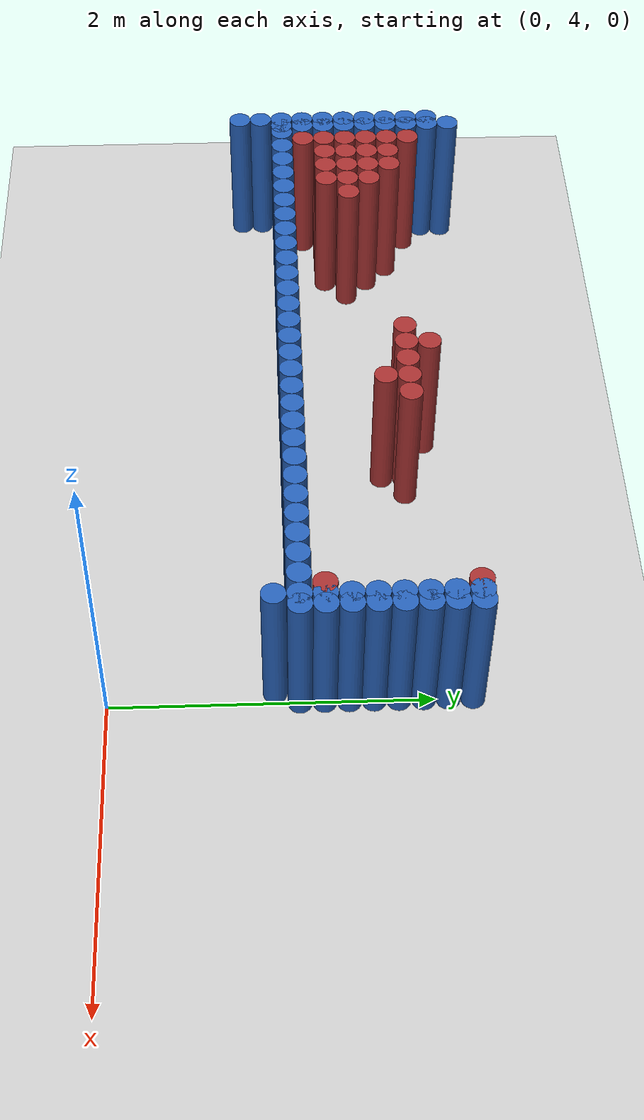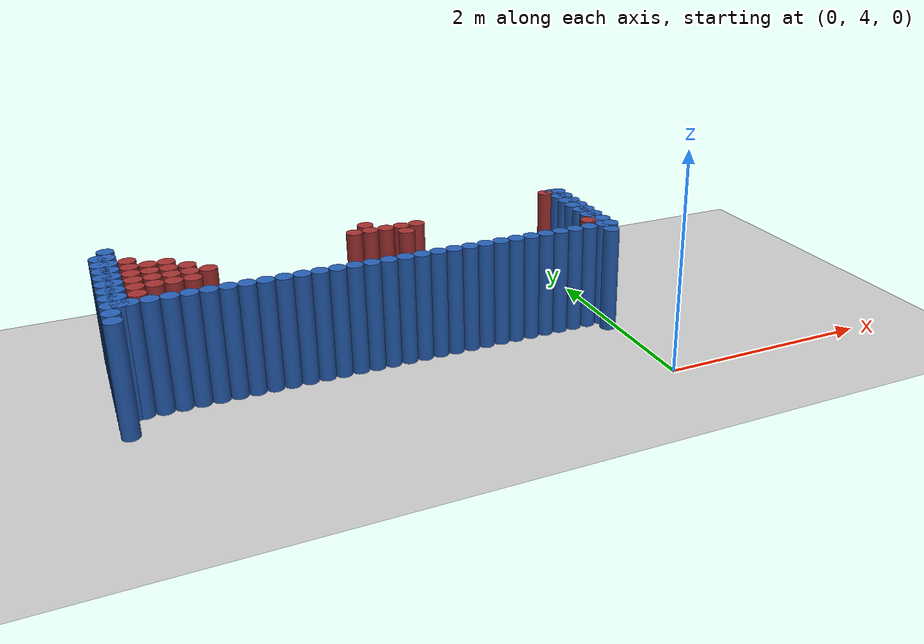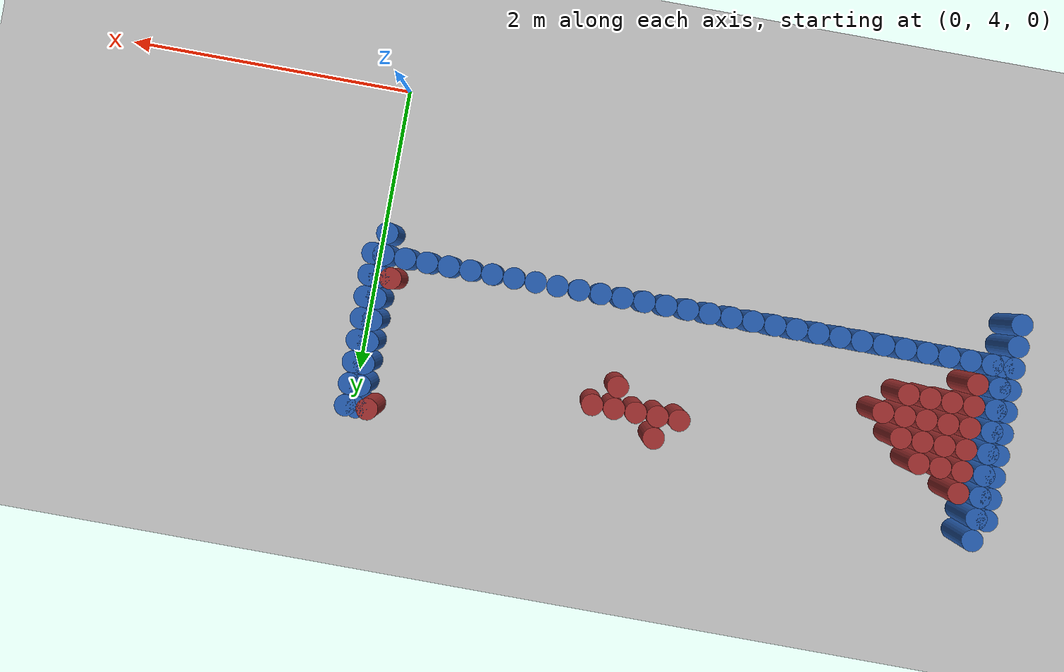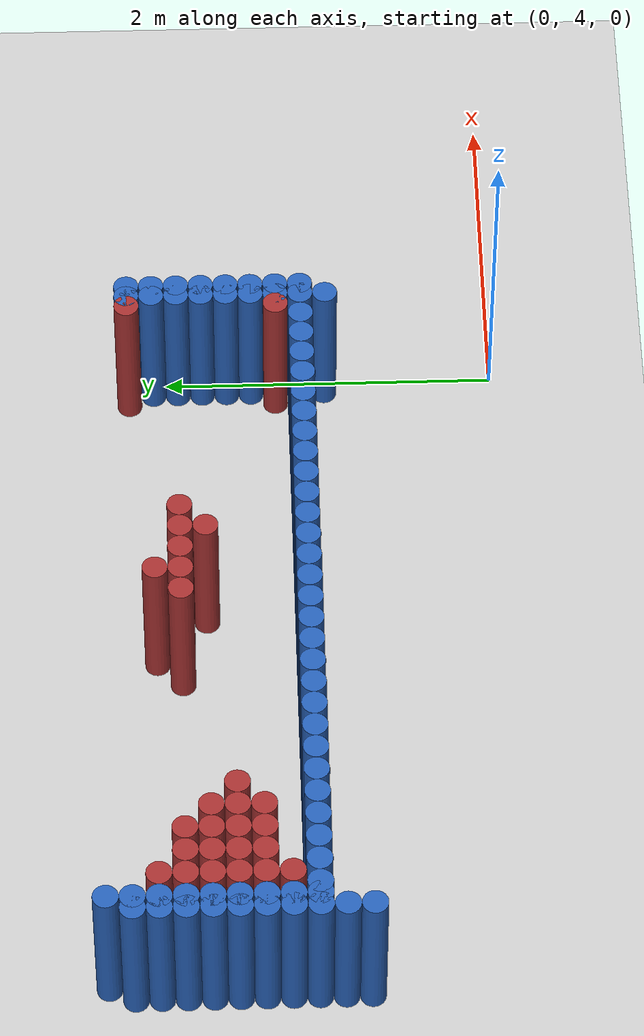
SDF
<sdf version="1.6">
 <world name="barn_world">
  <model name="ground_plane">
   <static>1</static>
   <link name="link">
    <collision name="collision">
     <geometry><plane><normal>0 0 1</normal><size>100 100</size></plane></geometry>
    </collision>
    <visual name="visual">
     <geometry><plane><normal>0 0 1</normal><size>100 100</size></plane></geometry>
     <material>
      <script><uri>file://media/materials/scripts/gazebo.material</uri><name>Gazebo/Grey</name></script>
     </material>
    </visual>
   </link>
  </model>
  <model name="unit_cylinder_93">
   <static>1</static>
   <pose>-4.4250 4.8750 0.5 0 0 0</pose>
   <link name="link">
    <collision name="collision">
     <geometry><cylinder><radius>0.075</radius><length>1</length></cylinder></geometry>
    </collision>
    <visual name="visual">
     <geometry><cylinder><radius>0.075</radius><length>1</length></cylinder></geometry>
     <material><ambient>0.152 0.379 0.72 1</ambient><diffuse>0.152 0.379 0.72 1</diffuse></material>
    </visual>
   </link>
  </model>
  <model name="unit_cylinder_94">
   <static>1</static>
   <pose>-0.0750 5.0250 0.5 0 0 0</pose>
   <link name="link">
    <collision name="collision">
     <geometry><cylinder><radius>0.075</radius><length>1</length></cylinder></geometry>
    </collision>
    <visual name="visual">
     <geometry><cylinder><radius>0.075</radius><length>1</length></cylinder></geometry>
     <material><ambient>0.152 0.379 0.72 1</ambient><diffuse>0.152 0.379 0.72 1</diffuse></material>
    </visual>
   </link>
  </model>
  <model name="unit_cylinder_95">
   <static>1</static>
   <pose>-4.4250 5.0250 0.5 0 0 0</pose>
   <link name="link">
    <collision name="collision">
     <geometry><cylinder><radius>0.075</radius><length>1</length></cylinder></geometry>
    </collision>
    <visual name="visual">
     <geometry><cylinder><radius>0.075</radius><length>1</length></cylinder></geometry>
     <material><ambient>0.152 0.379 0.72 1</ambient><diffuse>0.152 0.379 0.72 1</diffuse></material>
    </visual>
   </link>
  </model>
  <model name="unit_cylinder_96">
   <static>1</static>
   <pose>-0.0750 5.1750 0.5 0 0 0</pose>
   <link name="link">
    <collision name="collision">
     <geometry><cylinder><radius>0.075</radius><length>1</length></cylinder></geometry>
    </collision>
    <visual name="visual">
     <geometry><cylinder><radius>0.075</radius><length>1</length></cylinder></geometry>
     <material><ambient>0.152 0.379 0.72 1</ambient><diffuse>0.152 0.379 0.72 1</diffuse></material>
    </visual>
   </link>
  </model>
  <model name="unit_cylinder_97">
   <static>1</static>
   <pose>-0.2250 5.1750 0.5 0 0 0</pose>
   <link name="link">
    <collision name="collision">
     <geometry><cylinder><radius>0.075</radius><length>1</length></cylinder></geometry>
    </collision>
    <visual name="visual">
     <geometry><cylinder><radius>0.075</radius><length>1</length></cylinder></geometry>
     <material><ambient>0.152 0.379 0.72 1</ambient><diffuse>0.152 0.379 0.72 1</diffuse></material>
    </visual>
   </link>
  </model>
  <model name="unit_cylinder_98">
   <static>1</static>
   <pose>-0.3750 5.1750 0.5 0 0 0</pose>
   <link name="link">
    <collision name="collision">
     <geometry><cylinder><radius>0.075</radius><length>1</length></cylinder></geometry>
    </collision>
    <visual name="visual">
     <geometry><cylinder><radius>0.075</radius><length>1</length></cylinder></geometry>
     <material><ambient>0.152 0.379 0.72 1</ambient><diffuse>0.152 0.379 0.72 1</diffuse></material>
    </visual>
   </link>
  </model>
  <model name="unit_cylinder_99">
   <static>1</static>
   <pose>-0.5250 5.1750 0.5 0 0 0</pose>
   <link name="link">
    <collision name="collision">
     <geometry><cylinder><radius>0.075</radius><length>1</length></cylinder></geometry>
    </collision>
    <visual name="visual">
     <geometry><cylinder><radius>0.075</radius><length>1</length></cylinder></geometry>
     <material><ambient>0.152 0.379 0.72 1</ambient><diffuse>0.152 0.379 0.72 1</diffuse></material>
    </visual>
   </link>
  </model>
  <model name="unit_cylinder_100">
   <static>1</static>
   <pose>-0.6750 5.1750 0.5 0 0 0</pose>
   <link name="link">
    <collision name="collision">
     <geometry><cylinder><radius>0.075</radius><length>1</length></cylinder></geometry>
    </collision>
    <visual name="visual">
     <geometry><cylinder><radius>0.075</radius><length>1</length></cylinder></geometry>
     <material><ambient>0.152 0.379 0.72 1</ambient><diffuse>0.152 0.379 0.72 1</diffuse></material>
    </visual>
   </link>
  </model>
  <model name="unit_cylinder_101">
   <static>1</static>
   <pose>-0.8250 5.1750 0.5 0 0 0</pose>
   <link name="link">
    <collision name="collision">
     <geometry><cylinder><radius>0.075</radius><length>1</length></cylinder></geometry>
    </collision>
    <visual name="visual">
     <geometry><cylinder><radius>0.075</radius><length>1</length></cylinder></geometry>
     <material><ambient>0.152 0.379 0.72 1</ambient><diffuse>0.152 0.379 0.72 1</diffuse></material>
    </visual>
   </link>
  </model>
  <model name="unit_cylinder_102">
   <static>1</static>
   <pose>-0.9750 5.1750 0.5 0 0 0</pose>
   <link name="link">
    <collision name="collision">
     <geometry><cylinder><radius>0.075</radius><length>1</length></cylinder></geometry>
    </collision>
    <visual name="visual">
     <geometry><cylinder><radius>0.075</radius><length>1</length></cylinder></geometry>
     <material><ambient>0.152 0.379 0.72 1</ambient><diffuse>0.152 0.379 0.72 1</diffuse></material>
    </visual>
   </link>
  </model>
  <model name="unit_cylinder_103">
   <static>1</static>
   <pose>-1.1250 5.1750 0.5 0 0 0</pose>
   <link name="link">
    <collision name="collision">
     <geometry><cylinder><radius>0.075</radius><length>1</length></cylinder></geometry>
    </collision>
    <visual name="visual">
     <geometry><cylinder><radius>0.075</radius><length>1</length></cylinder></geometry>
     <material><ambient>0.152 0.379 0.72 1</ambient><diffuse>0.152 0.379 0.72 1</diffuse></material>
    </visual>
   </link>
  </model>
  <model name="unit_cylinder_104">
   <static>1</static>
   <pose>-1.2750 5.1750 0.5 0 0 0</pose>
   <link name="link">
    <collision name="collision">
     <geometry><cylinder><radius>0.075</radius><length>1</length></cylinder></geometry>
    </collision>
    <visual name="visual">
     <geometry><cylinder><radius>0.075</radius><length>1</length></cylinder></geometry>
     <material><ambient>0.152 0.379 0.72 1</ambient><diffuse>0.152 0.379 0.72 1</diffuse></material>
    </visual>
   </link>
  </model>
  <model name="unit_cylinder_105">
   <static>1</static>
   <pose>-1.4250 5.1750 0.5 0 0 0</pose>
   <link name="link">
    <collision name="collision">
     <geometry><cylinder><radius>0.075</radius><length>1</length></cylinder></geometry>
    </collision>
    <visual name="visual">
     <geometry><cylinder><radius>0.075</radius><length>1</length></cylinder></geometry>
     <material><ambient>0.152 0.379 0.72 1</ambient><diffuse>0.152 0.379 0.72 1</diffuse></material>
    </visual>
   </link>
  </model>
  <model name="unit_cylinder_106">
   <static>1</static>
   <pose>-1.5750 5.1750 0.5 0 0 0</pose>
   <link name="link">
    <collision name="collision">
     <geometry><cylinder><radius>0.075</radius><length>1</length></cylinder></geometry>
    </collision>
    <visual name="visual">
     <geometry><cylinder><radius>0.075</radius><length>1</length></cylinder></geometry>
     <material><ambient>0.152 0.379 0.72 1</ambient><diffuse>0.152 0.379 0.72 1</diffuse></material>
    </visual>
   </link>
  </model>
  <model name="unit_cylinder_107">
   <static>1</static>
   <pose>-1.7250 5.1750 0.5 0 0 0</pose>
   <link name="link">
    <collision name="collision">
     <geometry><cylinder><radius>0.075</radius><length>1</length></cylinder></geometry>
    </collision>
    <visual name="visual">
     <geometry><cylinder><radius>0.075</radius><length>1</length></cylinder></geometry>
     <material><ambient>0.152 0.379 0.72 1</ambient><diffuse>0.152 0.379 0.72 1</diffuse></material>
    </visual>
   </link>
  </model>
  <model name="unit_cylinder_108">
   <static>1</static>
   <pose>-1.8750 5.1750 0.5 0 0 0</pose>
   <link name="link">
    <collision name="collision">
     <geometry><cylinder><radius>0.075</radius><length>1</length></cylinder></geometry>
    </collision>
    <visual name="visual">
     <geometry><cylinder><radius>0.075</radius><length>1</length></cylinder></geometry>
     <material><ambient>0.152 0.379 0.72 1</ambient><diffuse>0.152 0.379 0.72 1</diffuse></material>
    </visual>
   </link>
  </model>
  <model name="unit_cylinder_109">
   <static>1</static>
   <pose>-2.0250 5.1750 0.5 0 0 0</pose>
   <link name="link">
    <collision name="collision">
     <geometry><cylinder><radius>0.075</radius><length>1</length></cylinder></geometry>
    </collision>
    <visual name="visual">
     <geometry><cylinder><radius>0.075</radius><length>1</length></cylinder></geometry>
     <material><ambient>0.152 0.379 0.72 1</ambient><diffuse>0.152 0.379 0.72 1</diffuse></material>
    </visual>
   </link>
  </model>
  <model name="unit_cylinder_110">
   <static>1</static>
   <pose>-2.1750 5.1750 0.5 0 0 0</pose>
   <link name="link">
    <collision name="collision">
     <geometry><cylinder><radius>0.075</radius><length>1</length></cylinder></geometry>
    </collision>
    <visual name="visual">
     <geometry><cylinder><radius>0.075</radius><length>1</length></cylinder></geometry>
     <material><ambient>0.152 0.379 0.72 1</ambient><diffuse>0.152 0.379 0.72 1</diffuse></material>
    </visual>
   </link>
  </model>
  <model name="unit_cylinder_111">
   <static>1</static>
   <pose>-2.3250 5.1750 0.5 0 0 0</pose>
   <link name="link">
    <collision name="collision">
     <geometry><cylinder><radius>0.075</radius><length>1</length></cylinder></geometry>
    </collision>
    <visual name="visual">
     <geometry><cylinder><radius>0.075</radius><length>1</length></cylinder></geometry>
     <material><ambient>0.152 0.379 0.72 1</ambient><diffuse>0.152 0.379 0.72 1</diffuse></material>
    </visual>
   </link>
  </model>
  <model name="unit_cylinder_112">
   <static>1</static>
   <pose>-2.4750 5.1750 0.5 0 0 0</pose>
   <link name="link">
    <collision name="collision">
     <geometry><cylinder><radius>0.075</radius><length>1</length></cylinder></geometry>
    </collision>
    <visual name="visual">
     <geometry><cylinder><radius>0.075</radius><length>1</length></cylinder></geometry>
     <material><ambient>0.152 0.379 0.72 1</ambient><diffuse>0.152 0.379 0.72 1</diffuse></material>
    </visual>
   </link>
  </model>
  <model name="unit_cylinder_113">
   <static>1</static>
   <pose>-2.6250 5.1750 0.5 0 0 0</pose>
   <link name="link">
    <collision name="collision">
     <geometry><cylinder><radius>0.075</radius><length>1</length></cylinder></geometry>
    </collision>
    <visual name="visual">
     <geometry><cylinder><radius>0.075</radius><length>1</length></cylinder></geometry>
     <material><ambient>0.152 0.379 0.72 1</ambient><diffuse>0.152 0.379 0.72 1</diffuse></material>
    </visual>
   </link>
  </model>
  <model name="unit_cylinder_114">
   <static>1</static>
   <pose>-2.7750 5.1750 0.5 0 0 0</pose>
   <link name="link">
    <collision name="collision">
     <geometry><cylinder><radius>0.075</radius><length>1</length></cylinder></geometry>
    </collision>
    <visual name="visual">
     <geometry><cylinder><radius>0.075</radius><length>1</length></cylinder></geometry>
     <material><ambient>0.152 0.379 0.72 1</ambient><diffuse>0.152 0.379 0.72 1</diffuse></material>
    </visual>
   </link>
  </model>
  <model name="unit_cylinder_115">
   <static>1</static>
   <pose>-2.9250 5.1750 0.5 0 0 0</pose>
   <link name="link">
    <collision name="collision">
     <geometry><cylinder><radius>0.075</radius><length>1</length></cylinder></geometry>
    </collision>
    <visual name="visual">
     <geometry><cylinder><radius>0.075</radius><length>1</length></cylinder></geometry>
     <material><ambient>0.152 0.379 0.72 1</ambient><diffuse>0.152 0.379 0.72 1</diffuse></material>
    </visual>
   </link>
  </model>
  <model name="unit_cylinder_116">
   <static>1</static>
   <pose>-3.0750 5.1750 0.5 0 0 0</pose>
   <link name="link">
    <collision name="collision">
     <geometry><cylinder><radius>0.075</radius><length>1</length></cylinder></geometry>
    </collision>
    <visual name="visual">
     <geometry><cylinder><radius>0.075</radius><length>1</length></cylinder></geometry>
     <material><ambient>0.152 0.379 0.72 1</ambient><diffuse>0.152 0.379 0.72 1</diffuse></material>
    </visual>
   </link>
  </model>
  <model name="unit_cylinder_117">
   <static>1</static>
   <pose>-3.2250 5.1750 0.5 0 0 0</pose>
   <link name="link">
    <collision name="collision">
     <geometry><cylinder><radius>0.075</radius><length>1</length></cylinder></geometry>
    </collision>
    <visual name="visual">
     <geometry><cylinder><radius>0.075</radius><length>1</length></cylinder></geometry>
     <material><ambient>0.152 0.379 0.72 1</ambient><diffuse>0.152 0.379 0.72 1</diffuse></material>
    </visual>
   </link>
  </model>
  <model name="unit_cylinder_118">
   <static>1</static>
   <pose>-3.3750 5.1750 0.5 0 0 0</pose>
   <link name="link">
    <collision name="collision">
     <geometry><cylinder><radius>0.075</radius><length>1</length></cylinder></geometry>
    </collision>
    <visual name="visual">
     <geometry><cylinder><radius>0.075</radius><length>1</length></cylinder></geometry>
     <material><ambient>0.152 0.379 0.72 1</ambient><diffuse>0.152 0.379 0.72 1</diffuse></material>
    </visual>
   </link>
  </model>
  <model name="unit_cylinder_119">
   <static>1</static>
   <pose>-3.5250 5.1750 0.5 0 0 0</pose>
   <link name="link">
    <collision name="collision">
     <geometry><cylinder><radius>0.075</radius><length>1</length></cylinder></geometry>
    </collision>
    <visual name="visual">
     <geometry><cylinder><radius>0.075</radius><length>1</length></cylinder></geometry>
     <material><ambient>0.152 0.379 0.72 1</ambient><diffuse>0.152 0.379 0.72 1</diffuse></material>
    </visual>
   </link>
  </model>
  <model name="unit_cylinder_120">
   <static>1</static>
   <pose>-3.6750 5.1750 0.5 0 0 0</pose>
   <link name="link">
    <collision name="collision">
     <geometry><cylinder><radius>0.075</radius><length>1</length></cylinder></geometry>
    </collision>
    <visual name="visual">
     <geometry><cylinder><radius>0.075</radius><length>1</length></cylinder></geometry>
     <material><ambient>0.152 0.379 0.72 1</ambient><diffuse>0.152 0.379 0.72 1</diffuse></material>
    </visual>
   </link>
  </model>
  <model name="unit_cylinder_121">
   <static>1</static>
   <pose>-3.8250 5.1750 0.5 0 0 0</pose>
   <link name="link">
    <collision name="collision">
     <geometry><cylinder><radius>0.075</radius><length>1</length></cylinder></geometry>
    </collision>
    <visual name="visual">
     <geometry><cylinder><radius>0.075</radius><length>1</length></cylinder></geometry>
     <material><ambient>0.152 0.379 0.72 1</ambient><diffuse>0.152 0.379 0.72 1</diffuse></material>
    </visual>
   </link>
  </model>
  <model name="unit_cylinder_122">
   <static>1</static>
   <pose>-3.9750 5.1750 0.5 0 0 0</pose>
   <link name="link">
    <collision name="collision">
     <geometry><cylinder><radius>0.075</radius><length>1</length></cylinder></geometry>
    </collision>
    <visual name="visual">
     <geometry><cylinder><radius>0.075</radius><length>1</length></cylinder></geometry>
     <material><ambient>0.152 0.379 0.72 1</ambient><diffuse>0.152 0.379 0.72 1</diffuse></material>
    </visual>
   </link>
  </model>
  <model name="unit_cylinder_123">
   <static>1</static>
   <pose>-4.1250 5.1750 0.5 0 0 0</pose>
   <link name="link">
    <collision name="collision">
     <geometry><cylinder><radius>0.075</radius><length>1</length></cylinder></geometry>
    </collision>
    <visual name="visual">
     <geometry><cylinder><radius>0.075</radius><length>1</length></cylinder></geometry>
     <material><ambient>0.152 0.379 0.72 1</ambient><diffuse>0.152 0.379 0.72 1</diffuse></material>
    </visual>
   </link>
  </model>
  <model name="unit_cylinder_124">
   <static>1</static>
   <pose>-4.2750 5.1750 0.5 0 0 0</pose>
   <link name="link">
    <collision name="collision">
     <geometry><cylinder><radius>0.075</radius><length>1</length></cylinder></geometry>
    </collision>
    <visual name="visual">
     <geometry><cylinder><radius>0.075</radius><length>1</length></cylinder></geometry>
     <material><ambient>0.152 0.379 0.72 1</ambient><diffuse>0.152 0.379 0.72 1</diffuse></material>
    </visual>
   </link>
  </model>
  <model name="unit_cylinder_125">
   <static>1</static>
   <pose>-4.4250 5.1750 0.5 0 0 0</pose>
   <link name="link">
    <collision name="collision">
     <geometry><cylinder><radius>0.075</radius><length>1</length></cylinder></geometry>
    </collision>
    <visual name="visual">
     <geometry><cylinder><radius>0.075</radius><length>1</length></cylinder></geometry>
     <material><ambient>0.152 0.379 0.72 1</ambient><diffuse>0.152 0.379 0.72 1</diffuse></material>
    </visual>
   </link>
  </model>
  <model name="unit_cylinder_126">
   <static>1</static>
   <pose>-4.3500 5.1750 0.5 0 0 0</pose>
   <link name="link">
    <collision name="collision">
     <geometry><cylinder><radius>0.075</radius><length>1</length></cylinder></geometry>
    </collision>
    <visual name="visual">
     <geometry><cylinder><radius>0.075</radius><length>1</length></cylinder></geometry>
     <material><ambient>0.152 0.379 0.72 1</ambient><diffuse>0.152 0.379 0.72 1</diffuse></material>
    </visual>
   </link>
  </model>
  <model name="unit_cylinder_127">
   <static>1</static>
   <pose>-4.3500 5.3250 0.5 0 0 0</pose>
   <link name="link">
    <collision name="collision">
     <geometry><cylinder><radius>0.075</radius><length>1</length></cylinder></geometry>
    </collision>
    <visual name="visual">
     <geometry><cylinder><radius>0.075</radius><length>1</length></cylinder></geometry>
     <material><ambient>0.152 0.379 0.72 1</ambient><diffuse>0.152 0.379 0.72 1</diffuse></material>
    </visual>
   </link>
  </model>
  <model name="unit_cylinder_128">
   <static>1</static>
   <pose>-4.3500 5.4750 0.5 0 0 0</pose>
   <link name="link">
    <collision name="collision">
     <geometry><cylinder><radius>0.075</radius><length>1</length></cylinder></geometry>
    </collision>
    <visual name="visual">
     <geometry><cylinder><radius>0.075</radius><length>1</length></cylinder></geometry>
     <material><ambient>0.152 0.379 0.72 1</ambient><diffuse>0.152 0.379 0.72 1</diffuse></material>
    </visual>
   </link>
  </model>
  <model name="unit_cylinder_129">
   <static>1</static>
   <pose>-4.3500 5.6250 0.5 0 0 0</pose>
   <link name="link">
    <collision name="collision">
     <geometry><cylinder><radius>0.075</radius><length>1</length></cylinder></geometry>
    </collision>
    <visual name="visual">
     <geometry><cylinder><radius>0.075</radius><length>1</length></cylinder></geometry>
     <material><ambient>0.152 0.379 0.72 1</ambient><diffuse>0.152 0.379 0.72 1</diffuse></material>
    </visual>
   </link>
  </model>
  <model name="unit_cylinder_130">
   <static>1</static>
   <pose>-4.3500 5.7750 0.5 0 0 0</pose>
   <link name="link">
    <collision name="collision">
     <geometry><cylinder><radius>0.075</radius><length>1</length></cylinder></geometry>
    </collision>
    <visual name="visual">
     <geometry><cylinder><radius>0.075</radius><length>1</length></cylinder></geometry>
     <material><ambient>0.152 0.379 0.72 1</ambient><diffuse>0.152 0.379 0.72 1</diffuse></material>
    </visual>
   </link>
  </model>
  <model name="unit_cylinder_131">
   <static>1</static>
   <pose>-4.3500 5.9250 0.5 0 0 0</pose>
   <link name="link">
    <collision name="collision">
     <geometry><cylinder><radius>0.075</radius><length>1</length></cylinder></geometry>
    </collision>
    <visual name="visual">
     <geometry><cylinder><radius>0.075</radius><length>1</length></cylinder></geometry>
     <material><ambient>0.152 0.379 0.72 1</ambient><diffuse>0.152 0.379 0.72 1</diffuse></material>
    </visual>
   </link>
  </model>
  <model name="unit_cylinder_132">
   <static>1</static>
   <pose>-4.3500 6.0750 0.5 0 0 0</pose>
   <link name="link">
    <collision name="collision">
     <geometry><cylinder><radius>0.075</radius><length>1</length></cylinder></geometry>
    </collision>
    <visual name="visual">
     <geometry><cylinder><radius>0.075</radius><length>1</length></cylinder></geometry>
     <material><ambient>0.152 0.379 0.72 1</ambient><diffuse>0.152 0.379 0.72 1</diffuse></material>
    </visual>
   </link>
  </model>
  <model name="unit_cylinder_133">
   <static>1</static>
   <pose>-4.3500 6.2250 0.5 0 0 0</pose>
   <link name="link">
    <collision name="collision">
     <geometry><cylinder><radius>0.075</radius><length>1</length></cylinder></geometry>
    </collision>
    <visual name="visual">
     <geometry><cylinder><radius>0.075</radius><length>1</length></cylinder></geometry>
     <material><ambient>0.152 0.379 0.72 1</ambient><diffuse>0.152 0.379 0.72 1</diffuse></material>
    </visual>
   </link>
  </model>
  <model name="unit_cylinder_134">
   <static>1</static>
   <pose>-4.3500 6.3750 0.5 0 0 0</pose>
   <link name="link">
    <collision name="collision">
     <geometry><cylinder><radius>0.075</radius><length>1</length></cylinder></geometry>
    </collision>
    <visual name="visual">
     <geometry><cylinder><radius>0.075</radius><length>1</length></cylinder></geometry>
     <material><ambient>0.152 0.379 0.72 1</ambient><diffuse>0.152 0.379 0.72 1</diffuse></material>
    </visual>
   </link>
  </model>
  <model name="unit_cylinder_156">
   <static>1</static>
   <pose>-4.2000 5.3250 0.5 0 0 0</pose>
   <link name="link">
    <collision name="collision">
     <geometry><cylinder><radius>0.075</radius><length>1</length></cylinder></geometry>
    </collision>
    <visual name="visual">
     <geometry><cylinder><radius>0.075</radius><length>1</length></cylinder></geometry>
     <material><ambient>0.648 0.192 0.192 1</ambient><diffuse>0.648 0.192 0.192 1</diffuse></material>
    </visual>
   </link>
  </model>
  <model name="unit_cylinder_157">
   <static>1</static>
   <pose>-4.2000 5.4750 0.5 0 0 0</pose>
   <link name="link">
    <collision name="collision">
     <geometry><cylinder><radius>0.075</radius><length>1</length></cylinder></geometry>
    </collision>
    <visual name="visual">
     <geometry><cylinder><radius>0.075</radius><length>1</length></cylinder></geometry>
     <material><ambient>0.648 0.192 0.192 1</ambient><diffuse>0.648 0.192 0.192 1</diffuse></material>
    </visual>
   </link>
  </model>
  <model name="unit_cylinder_158">
   <static>1</static>
   <pose>-4.2000 5.6250 0.5 0 0 0</pose>
   <link name="link">
    <collision name="collision">
     <geometry><cylinder><radius>0.075</radius><length>1</length></cylinder></geometry>
    </collision>
    <visual name="visual">
     <geometry><cylinder><radius>0.075</radius><length>1</length></cylinder></geometry>
     <material><ambient>0.648 0.192 0.192 1</ambient><diffuse>0.648 0.192 0.192 1</diffuse></material>
    </visual>
   </link>
  </model>
  <model name="unit_cylinder_159">
   <static>1</static>
   <pose>-4.2000 5.7750 0.5 0 0 0</pose>
   <link name="link">
    <collision name="collision">
     <geometry><cylinder><radius>0.075</radius><length>1</length></cylinder></geometry>
    </collision>
    <visual name="visual">
     <geometry><cylinder><radius>0.075</radius><length>1</length></cylinder></geometry>
     <material><ambient>0.648 0.192 0.192 1</ambient><diffuse>0.648 0.192 0.192 1</diffuse></material>
    </visual>
   </link>
  </model>
  <model name="unit_cylinder_160">
   <static>1</static>
   <pose>-4.2000 5.9250 0.5 0 0 0</pose>
   <link name="link">
    <collision name="collision">
     <geometry><cylinder><radius>0.075</radius><length>1</length></cylinder></geometry>
    </collision>
    <visual name="visual">
     <geometry><cylinder><radius>0.075</radius><length>1</length></cylinder></geometry>
     <material><ambient>0.648 0.192 0.192 1</ambient><diffuse>0.648 0.192 0.192 1</diffuse></material>
    </visual>
   </link>
  </model>
  <model name="unit_cylinder_161">
   <static>1</static>
   <pose>-4.2000 6.0750 0.5 0 0 0</pose>
   <link name="link">
    <collision name="collision">
     <geometry><cylinder><radius>0.075</radius><length>1</length></cylinder></geometry>
    </collision>
    <visual name="visual">
     <geometry><cylinder><radius>0.075</radius><length>1</length></cylinder></geometry>
     <material><ambient>0.648 0.192 0.192 1</ambient><diffuse>0.648 0.192 0.192 1</diffuse></material>
    </visual>
   </link>
  </model>
  <model name="unit_cylinder_174">
   <static>1</static>
   <pose>-4.0500 5.4750 0.5 0 0 0</pose>
   <link name="link">
    <collision name="collision">
     <geometry><cylinder><radius>0.075</radius><length>1</length></cylinder></geometry>
    </collision>
    <visual name="visual">
     <geometry><cylinder><radius>0.075</radius><length>1</length></cylinder></geometry>
     <material><ambient>0.648 0.192 0.192 1</ambient><diffuse>0.648 0.192 0.192 1</diffuse></material>
    </visual>
   </link>
  </model>
  <model name="unit_cylinder_175">
   <static>1</static>
   <pose>-4.0500 5.6250 0.5 0 0 0</pose>
   <link name="link">
    <collision name="collision">
     <geometry><cylinder><radius>0.075</radius><length>1</length></cylinder></geometry>
    </collision>
    <visual name="visual">
     <geometry><cylinder><radius>0.075</radius><length>1</length></cylinder></geometry>
     <material><ambient>0.648 0.192 0.192 1</ambient><diffuse>0.648 0.192 0.192 1</diffuse></material>
    </visual>
   </link>
  </model>
  <model name="unit_cylinder_176">
   <static>1</static>
   <pose>-4.0500 5.7750 0.5 0 0 0</pose>
   <link name="link">
    <collision name="collision">
     <geometry><cylinder><radius>0.075</radius><length>1</length></cylinder></geometry>
    </collision>
    <visual name="visual">
     <geometry><cylinder><radius>0.075</radius><length>1</length></cylinder></geometry>
     <material><ambient>0.648 0.192 0.192 1</ambient><diffuse>0.648 0.192 0.192 1</diffuse></material>
    </visual>
   </link>
  </model>
  <model name="unit_cylinder_177">
   <static>1</static>
   <pose>-4.0500 5.9250 0.5 0 0 0</pose>
   <link name="link">
    <collision name="collision">
     <geometry><cylinder><radius>0.075</radius><length>1</length></cylinder></geometry>
    </collision>
    <visual name="visual">
     <geometry><cylinder><radius>0.075</radius><length>1</length></cylinder></geometry>
     <material><ambient>0.648 0.192 0.192 1</ambient><diffuse>0.648 0.192 0.192 1</diffuse></material>
    </visual>
   </link>
  </model>
  <model name="unit_cylinder_183">
   <static>1</static>
   <pose>-3.9000 5.4750 0.5 0 0 0</pose>
   <link name="link">
    <collision name="collision">
     <geometry><cylinder><radius>0.075</radius><length>1</length></cylinder></geometry>
    </collision>
    <visual name="visual">
     <geometry><cylinder><radius>0.075</radius><length>1</length></cylinder></geometry>
     <material><ambient>0.648 0.192 0.192 1</ambient><diffuse>0.648 0.192 0.192 1</diffuse></material>
    </visual>
   </link>
  </model>
  <model name="unit_cylinder_184">
   <static>1</static>
   <pose>-3.9000 5.6250 0.5 0 0 0</pose>
   <link name="link">
    <collision name="collision">
     <geometry><cylinder><radius>0.075</radius><length>1</length></cylinder></geometry>
    </collision>
    <visual name="visual">
     <geometry><cylinder><radius>0.075</radius><length>1</length></cylinder></geometry>
     <material><ambient>0.648 0.192 0.192 1</ambient><diffuse>0.648 0.192 0.192 1</diffuse></material>
    </visual>
   </link>
  </model>
  <model name="unit_cylinder_185">
   <static>1</static>
   <pose>-3.9000 5.7750 0.5 0 0 0</pose>
   <link name="link">
    <collision name="collision">
     <geometry><cylinder><radius>0.075</radius><length>1</length></cylinder></geometry>
    </collision>
    <visual name="visual">
     <geometry><cylinder><radius>0.075</radius><length>1</length></cylinder></geometry>
     <material><ambient>0.648 0.192 0.192 1</ambient><diffuse>0.648 0.192 0.192 1</diffuse></material>
    </visual>
   </link>
  </model>
  <model name="unit_cylinder_186">
   <static>1</static>
   <pose>-3.9000 5.9250 0.5 0 0 0</pose>
   <link name="link">
    <collision name="collision">
     <geometry><cylinder><radius>0.075</radius><length>1</length></cylinder></geometry>
    </collision>
    <visual name="visual">
     <geometry><cylinder><radius>0.075</radius><length>1</length></cylinder></geometry>
     <material><ambient>0.648 0.192 0.192 1</ambient><diffuse>0.648 0.192 0.192 1</diffuse></material>
    </visual>
   </link>
  </model>
  <model name="unit_cylinder_190">
   <static>1</static>
   <pose>-3.7500 5.4750 0.5 0 0 0</pose>
   <link name="link">
    <collision name="collision">
     <geometry><cylinder><radius>0.075</radius><length>1</length></cylinder></geometry>
    </collision>
    <visual name="visual">
     <geometry><cylinder><radius>0.075</radius><length>1</length></cylinder></geometry>
     <material><ambient>0.648 0.192 0.192 1</ambient><diffuse>0.648 0.192 0.192 1</diffuse></material>
    </visual>
   </link>
  </model>
  <model name="unit_cylinder_191">
   <static>1</static>
   <pose>-3.7500 5.6250 0.5 0 0 0</pose>
   <link name="link">
    <collision name="collision">
     <geometry><cylinder><radius>0.075</radius><length>1</length></cylinder></geometry>
    </collision>
    <visual name="visual">
     <geometry><cylinder><radius>0.075</radius><length>1</length></cylinder></geometry>
     <material><ambient>0.648 0.192 0.192 1</ambient><diffuse>0.648 0.192 0.192 1</diffuse></material>
    </visual>
   </link>
  </model>
  <model name="unit_cylinder_192">
   <static>1</static>
   <pose>-3.7500 5.7750 0.5 0 0 0</pose>
   <link name="link">
    <collision name="collision">
     <geometry><cylinder><radius>0.075</radius><length>1</length></cylinder></geometry>
    </collision>
    <visual name="visual">
     <geometry><cylinder><radius>0.075</radius><length>1</length></cylinder></geometry>
     <material><ambient>0.648 0.192 0.192 1</ambient><diffuse>0.648 0.192 0.192 1</diffuse></material>
    </visual>
   </link>
  </model>
  <model name="unit_cylinder_194">
   <static>1</static>
   <pose>-3.6000 5.6250 0.5 0 0 0</pose>
   <link name="link">
    <collision name="collision">
     <geometry><cylinder><radius>0.075</radius><length>1</length></cylinder></geometry>
    </collision>
    <visual name="visual">
     <geometry><cylinder><radius>0.075</radius><length>1</length></cylinder></geometry>
     <material><ambient>0.648 0.192 0.192 1</ambient><diffuse>0.648 0.192 0.192 1</diffuse></material>
    </visual>
   </link>
  </model>
  <model name="unit_cylinder_204">
   <static>1</static>
   <pose>-2.2500 5.9250 0.5 0 0 0</pose>
   <link name="link">
    <collision name="collision">
     <geometry><cylinder><radius>0.075</radius><length>1</length></cylinder></geometry>
    </collision>
    <visual name="visual">
     <geometry><cylinder><radius>0.075</radius><length>1</length></cylinder></geometry>
     <material><ambient>0.648 0.192 0.192 1</ambient><diffuse>0.648 0.192 0.192 1</diffuse></material>
    </visual>
   </link>
  </model>
  <model name="unit_cylinder_207">
   <static>1</static>
   <pose>-2.1000 5.9250 0.5 0 0 0</pose>
   <link name="link">
    <collision name="collision">
     <geometry><cylinder><radius>0.075</radius><length>1</length></cylinder></geometry>
    </collision>
    <visual name="visual">
     <geometry><cylinder><radius>0.075</radius><length>1</length></cylinder></geometry>
     <material><ambient>0.648 0.192 0.192 1</ambient><diffuse>0.648 0.192 0.192 1</diffuse></material>
    </visual>
   </link>
  </model>
  <model name="unit_cylinder_208">
   <static>1</static>
   <pose>-2.1000 6.0750 0.5 0 0 0</pose>
   <link name="link">
    <collision name="collision">
     <geometry><cylinder><radius>0.075</radius><length>1</length></cylinder></geometry>
    </collision>
    <visual name="visual">
     <geometry><cylinder><radius>0.075</radius><length>1</length></cylinder></geometry>
     <material><ambient>0.648 0.192 0.192 1</ambient><diffuse>0.648 0.192 0.192 1</diffuse></material>
    </visual>
   </link>
  </model>
  <model name="unit_cylinder_211">
   <static>1</static>
   <pose>-1.9500 5.9250 0.5 0 0 0</pose>
   <link name="link">
    <collision name="collision">
     <geometry><cylinder><radius>0.075</radius><length>1</length></cylinder></geometry>
    </collision>
    <visual name="visual">
     <geometry><cylinder><radius>0.075</radius><length>1</length></cylinder></geometry>
     <material><ambient>0.648 0.192 0.192 1</ambient><diffuse>0.648 0.192 0.192 1</diffuse></material>
    </visual>
   </link>
  </model>
  <model name="unit_cylinder_212">
   <static>1</static>
   <pose>-1.8000 5.7750 0.5 0 0 0</pose>
   <link name="link">
    <collision name="collision">
     <geometry><cylinder><radius>0.075</radius><length>1</length></cylinder></geometry>
    </collision>
    <visual name="visual">
     <geometry><cylinder><radius>0.075</radius><length>1</length></cylinder></geometry>
     <material><ambient>0.648 0.192 0.192 1</ambient><diffuse>0.648 0.192 0.192 1</diffuse></material>
    </visual>
   </link>
  </model>
  <model name="unit_cylinder_213">
   <static>1</static>
   <pose>-1.8000 5.9250 0.5 0 0 0</pose>
   <link name="link">
    <collision name="collision">
     <geometry><cylinder><radius>0.075</radius><length>1</length></cylinder></geometry>
    </collision>
    <visual name="visual">
     <geometry><cylinder><radius>0.075</radius><length>1</length></cylinder></geometry>
     <material><ambient>0.648 0.192 0.192 1</ambient><diffuse>0.648 0.192 0.192 1</diffuse></material>
    </visual>
   </link>
  </model>
  <model name="unit_cylinder_214">
   <static>1</static>
   <pose>-1.6500 5.9250 0.5 0 0 0</pose>
   <link name="link">
    <collision name="collision">
     <geometry><cylinder><radius>0.075</radius><length>1</length></cylinder></geometry>
    </collision>
    <visual name="visual">
     <geometry><cylinder><radius>0.075</radius><length>1</length></cylinder></geometry>
     <material><ambient>0.648 0.192 0.192 1</ambient><diffuse>0.648 0.192 0.192 1</diffuse></material>
    </visual>
   </link>
  </model>
  <model name="unit_cylinder_238">
   <static>1</static>
   <pose>-0.1500 5.3250 0.5 0 0 0</pose>
   <link name="link">
    <collision name="collision">
     <geometry><cylinder><radius>0.075</radius><length>1</length></cylinder></geometry>
    </collision>
    <visual name="visual">
     <geometry><cylinder><radius>0.075</radius><length>1</length></cylinder></geometry>
     <material><ambient>0.648 0.192 0.192 1</ambient><diffuse>0.648 0.192 0.192 1</diffuse></material>
    </visual>
   </link>
  </model>
  <model name="unit_cylinder_239">
   <static>1</static>
   <pose>-0.1500 6.2250 0.5 0 0 0</pose>
   <link name="link">
    <collision name="collision">
     <geometry><cylinder><radius>0.075</radius><length>1</length></cylinder></geometry>
    </collision>
    <visual name="visual">
     <geometry><cylinder><radius>0.075</radius><length>1</length></cylinder></geometry>
     <material><ambient>0.648 0.192 0.192 1</ambient><diffuse>0.648 0.192 0.192 1</diffuse></material>
    </visual>
   </link>
  </model>
  <model name="unit_cylinder_254">
   <static>1</static>
   <pose>0.0000 5.1750 0.5 0 0 0</pose>
   <link name="link">
    <collision name="collision">
     <geometry><cylinder><radius>0.075</radius><length>1</length></cylinder></geometry>
    </collision>
    <visual name="visual">
     <geometry><cylinder><radius>0.075</radius><length>1</length></cylinder></geometry>
     <material><ambient>0.152 0.379 0.72 1</ambient><diffuse>0.152 0.379 0.72 1</diffuse></material>
    </visual>
   </link>
  </model>
  <model name="unit_cylinder_255">
   <static>1</static>
   <pose>0.0000 5.3250 0.5 0 0 0</pose>
   <link name="link">
    <collision name="collision">
     <geometry><cylinder><radius>0.075</radius><length>1</length></cylinder></geometry>
    </collision>
    <visual name="visual">
     <geometry><cylinder><radius>0.075</radius><length>1</length></cylinder></geometry>
     <material><ambient>0.152 0.379 0.72 1</ambient><diffuse>0.152 0.379 0.72 1</diffuse></material>
    </visual>
   </link>
  </model>
  <model name="unit_cylinder_256">
   <static>1</static>
   <pose>0.0000 5.4750 0.5 0 0 0</pose>
   <link name="link">
    <collision name="collision">
     <geometry><cylinder><radius>0.075</radius><length>1</length></cylinder></geometry>
    </collision>
    <visual name="visual">
     <geometry><cylinder><radius>0.075</radius><length>1</length></cylinder></geometry>
     <material><ambient>0.152 0.379 0.72 1</ambient><diffuse>0.152 0.379 0.72 1</diffuse></material>
    </visual>
   </link>
  </model>
  <model name="unit_cylinder_257">
   <static>1</static>
   <pose>0.0000 5.6250 0.5 0 0 0</pose>
   <link name="link">
    <collision name="collision">
     <geometry><cylinder><radius>0.075</radius><length>1</length></cylinder></geometry>
    </collision>
    <visual name="visual">
     <geometry><cylinder><radius>0.075</radius><length>1</length></cylinder></geometry>
     <material><ambient>0.152 0.379 0.72 1</ambient><diffuse>0.152 0.379 0.72 1</diffuse></material>
    </visual>
   </link>
  </model>
  <model name="unit_cylinder_258">
   <static>1</static>
   <pose>0.0000 5.7750 0.5 0 0 0</pose>
   <link name="link">
    <collision name="collision">
     <geometry><cylinder><radius>0.075</radius><length>1</length></cylinder></geometry>
    </collision>
    <visual name="visual">
     <geometry><cylinder><radius>0.075</radius><length>1</length></cylinder></geometry>
     <material><ambient>0.152 0.379 0.72 1</ambient><diffuse>0.152 0.379 0.72 1</diffuse></material>
    </visual>
   </link>
  </model>
  <model name="unit_cylinder_259">
   <static>1</static>
   <pose>0.0000 5.9250 0.5 0 0 0</pose>
   <link name="link">
    <collision name="collision">
     <geometry><cylinder><radius>0.075</radius><length>1</length></cylinder></geometry>
    </collision>
    <visual name="visual">
     <geometry><cylinder><radius>0.075</radius><length>1</length></cylinder></geometry>
     <material><ambient>0.152 0.379 0.72 1</ambient><diffuse>0.152 0.379 0.72 1</diffuse></material>
    </visual>
   </link>
  </model>
  <model name="unit_cylinder_260">
   <static>1</static>
   <pose>0.0000 6.0750 0.5 0 0 0</pose>
   <link name="link">
    <collision name="collision">
     <geometry><cylinder><radius>0.075</radius><length>1</length></cylinder></geometry>
    </collision>
    <visual name="visual">
     <geometry><cylinder><radius>0.075</radius><length>1</length></cylinder></geometry>
     <material><ambient>0.152 0.379 0.72 1</ambient><diffuse>0.152 0.379 0.72 1</diffuse></material>
    </visual>
   </link>
  </model>
  <model name="unit_cylinder_261">
   <static>1</static>
   <pose>0.0000 6.2250 0.5 0 0 0</pose>
   <link name="link">
    <collision name="collision">
     <geometry><cylinder><radius>0.075</radius><length>1</length></cylinder></geometry>
    </collision>
    <visual name="visual">
     <geometry><cylinder><radius>0.075</radius><length>1</length></cylinder></geometry>
     <material><ambient>0.152 0.379 0.72 1</ambient><diffuse>0.152 0.379 0.72 1</diffuse></material>
    </visual>
   </link>
  </model>
  <model name="unit_cylinder_314">
   <static>1</static>
   <pose>-0.0750 5.1750 0.5 0 0 0</pose>
   <link name="link">
    <collision name="collision">
     <geometry><cylinder><radius>0.075</radius><length>1</length></cylinder></geometry>
    </collision>
    <visual name="visual">
     <geometry><cylinder><radius>0.075</radius><length>1</length></cylinder></geometry>
     <material><ambient>0.152 0.379 0.72 1</ambient><diffuse>0.152 0.379 0.72 1</diffuse></material>
    </visual>
   </link>
  </model>
  <model name="unit_cylinder_315">
   <static>1</static>
   <pose>-4.4250 5.1750 0.5 0 0 0</pose>
   <link name="link">
    <collision name="collision">
     <geometry><cylinder><radius>0.075</radius><length>1</length></cylinder></geometry>
    </collision>
    <visual name="visual">
     <geometry><cylinder><radius>0.075</radius><length>1</length></cylinder></geometry>
     <material><ambient>0.152 0.379 0.72 1</ambient><diffuse>0.152 0.379 0.72 1</diffuse></material>
    </visual>
   </link>
  </model>
  <model name="unit_cylinder_316">
   <static>1</static>
   <pose>-0.0750 5.3250 0.5 0 0 0</pose>
   <link name="link">
    <collision name="collision">
     <geometry><cylinder><radius>0.075</radius><length>1</length></cylinder></geometry>
    </collision>
    <visual name="visual">
     <geometry><cylinder><radius>0.075</radius><length>1</length></cylinder></geometry>
     <material><ambient>0.152 0.379 0.72 1</ambient><diffuse>0.152 0.379 0.72 1</diffuse></material>
    </visual>
   </link>
  </model>
  <model name="unit_cylinder_317">
   <static>1</static>
   <pose>-4.4250 5.3250 0.5 0 0 0</pose>
   <link name="link">
    <collision name="collision">
     <geometry><cylinder><radius>0.075</radius><length>1</length></cylinder></geometry>
    </collision>
    <visual name="visual">
     <geometry><cylinder><radius>0.075</radius><length>1</length></cylinder></geometry>
     <material><ambient>0.152 0.379 0.72 1</ambient><diffuse>0.152 0.379 0.72 1</diffuse></material>
    </visual>
   </link>
  </model>
  <model name="unit_cylinder_318">
   <static>1</static>
   <pose>-0.0750 5.4750 0.5 0 0 0</pose>
   <link name="link">
    <collision name="collision">
     <geometry><cylinder><radius>0.075</radius><length>1</length></cylinder></geometry>
    </collision>
    <visual name="visual">
     <geometry><cylinder><radius>0.075</radius><length>1</length></cylinder></geometry>
     <material><ambient>0.152 0.379 0.72 1</ambient><diffuse>0.152 0.379 0.72 1</diffuse></material>
    </visual>
   </link>
  </model>
  <model name="unit_cylinder_319">
   <static>1</static>
   <pose>-4.4250 5.4750 0.5 0 0 0</pose>
   <link name="link">
    <collision name="collision">
     <geometry><cylinder><radius>0.075</radius><length>1</length></cylinder></geometry>
    </collision>
    <visual name="visual">
     <geometry><cylinder><radius>0.075</radius><length>1</length></cylinder></geometry>
     <material><ambient>0.152 0.379 0.72 1</ambient><diffuse>0.152 0.379 0.72 1</diffuse></material>
    </visual>
   </link>
  </model>
  <model name="unit_cylinder_320">
   <static>1</static>
   <pose>-0.0750 5.6250 0.5 0 0 0</pose>
   <link name="link">
    <collision name="collision">
     <geometry><cylinder><radius>0.075</radius><length>1</length></cylinder></geometry>
    </collision>
    <visual name="visual">
     <geometry><cylinder><radius>0.075</radius><length>1</length></cylinder></geometry>
     <material><ambient>0.152 0.379 0.72 1</ambient><diffuse>0.152 0.379 0.72 1</diffuse></material>
    </visual>
   </link>
  </model>
  <model name="unit_cylinder_321">
   <static>1</static>
   <pose>-4.4250 5.6250 0.5 0 0 0</pose>
   <link name="link">
    <collision name="collision">
     <geometry><cylinder><radius>0.075</radius><length>1</length></cylinder></geometry>
    </collision>
    <visual name="visual">
     <geometry><cylinder><radius>0.075</radius><length>1</length></cylinder></geometry>
     <material><ambient>0.152 0.379 0.72 1</ambient><diffuse>0.152 0.379 0.72 1</diffuse></material>
    </visual>
   </link>
  </model>
  <model name="unit_cylinder_322">
   <static>1</static>
   <pose>-0.0750 5.7750 0.5 0 0 0</pose>
   <link name="link">
    <collision name="collision">
     <geometry><cylinder><radius>0.075</radius><length>1</length></cylinder></geometry>
    </collision>
    <visual name="visual">
     <geometry><cylinder><radius>0.075</radius><length>1</length></cylinder></geometry>
     <material><ambient>0.152 0.379 0.72 1</ambient><diffuse>0.152 0.379 0.72 1</diffuse></material>
    </visual>
   </link>
  </model>
  <model name="unit_cylinder_323">
   <static>1</static>
   <pose>-4.4250 5.7750 0.5 0 0 0</pose>
   <link name="link">
    <collision name="collision">
     <geometry><cylinder><radius>0.075</radius><length>1</length></cylinder></geometry>
    </collision>
    <visual name="visual">
     <geometry><cylinder><radius>0.075</radius><length>1</length></cylinder></geometry>
     <material><ambient>0.152 0.379 0.72 1</ambient><diffuse>0.152 0.379 0.72 1</diffuse></material>
    </visual>
   </link>
  </model>
  <model name="unit_cylinder_324">
   <static>1</static>
   <pose>-0.0750 5.9250 0.5 0 0 0</pose>
   <link name="link">
    <collision name="collision">
     <geometry><cylinder><radius>0.075</radius><length>1</length></cylinder></geometry>
    </collision>
    <visual name="visual">
     <geometry><cylinder><radius>0.075</radius><length>1</length></cylinder></geometry>
     <material><ambient>0.152 0.379 0.72 1</ambient><diffuse>0.152 0.379 0.72 1</diffuse></material>
    </visual>
   </link>
  </model>
  <model name="unit_cylinder_325">
   <static>1</static>
   <pose>-4.4250 5.9250 0.5 0 0 0</pose>
   <link name="link">
    <collision name="collision">
     <geometry><cylinder><radius>0.075</radius><length>1</length></cylinder></geometry>
    </collision>
    <visual name="visual">
     <geometry><cylinder><radius>0.075</radius><length>1</length></cylinder></geometry>
     <material><ambient>0.152 0.379 0.72 1</ambient><diffuse>0.152 0.379 0.72 1</diffuse></material>
    </visual>
   </link>
  </model>
  <model name="unit_cylinder_326">
   <static>1</static>
   <pose>-0.0750 6.0750 0.5 0 0 0</pose>
   <link name="link">
    <collision name="collision">
     <geometry><cylinder><radius>0.075</radius><length>1</length></cylinder></geometry>
    </collision>
    <visual name="visual">
     <geometry><cylinder><radius>0.075</radius><length>1</length></cylinder></geometry>
     <material><ambient>0.152 0.379 0.72 1</ambient><diffuse>0.152 0.379 0.72 1</diffuse></material>
    </visual>
   </link>
  </model>
  <model name="unit_cylinder_327">
   <static>1</static>
   <pose>-4.4250 6.0750 0.5 0 0 0</pose>
   <link name="link">
    <collision name="collision">
     <geometry><cylinder><radius>0.075</radius><length>1</length></cylinder></geometry>
    </collision>
    <visual name="visual">
     <geometry><cylinder><radius>0.075</radius><length>1</length></cylinder></geometry>
     <material><ambient>0.152 0.379 0.72 1</ambient><diffuse>0.152 0.379 0.72 1</diffuse></material>
    </visual>
   </link>
  </model>
  <model name="unit_cylinder_328">
   <static>1</static>
   <pose>-0.0750 6.2250 0.5 0 0 0</pose>
   <link name="link">
    <collision name="collision">
     <geometry><cylinder><radius>0.075</radius><length>1</length></cylinder></geometry>
    </collision>
    <visual name="visual">
     <geometry><cylinder><radius>0.075</radius><length>1</length></cylinder></geometry>
     <material><ambient>0.152 0.379 0.72 1</ambient><diffuse>0.152 0.379 0.72 1</diffuse></material>
    </visual>
   </link>
  </model>
  <model name="unit_cylinder_329">
   <static>1</static>
   <pose>-4.4250 6.2250 0.5 0 0 0</pose>
   <link name="link">
    <collision name="collision">
     <geometry><cylinder><radius>0.075</radius><length>1</length></cylinder></geometry>
    </collision>
    <visual name="visual">
     <geometry><cylinder><radius>0.075</radius><length>1</length></cylinder></geometry>
     <material><ambient>0.152 0.379 0.72 1</ambient><diffuse>0.152 0.379 0.72 1</diffuse></material>
    </visual>
   </link>
  </model>
 </world>
</sdf>
